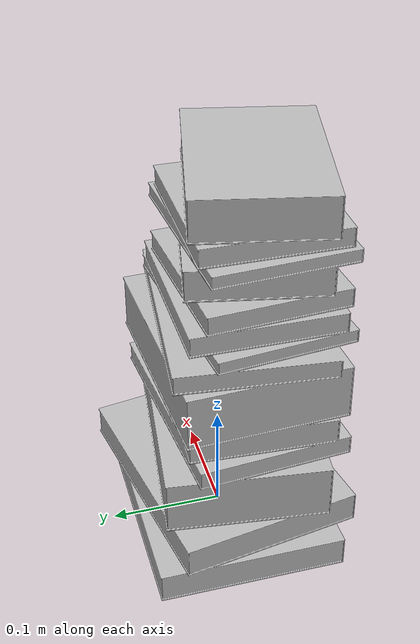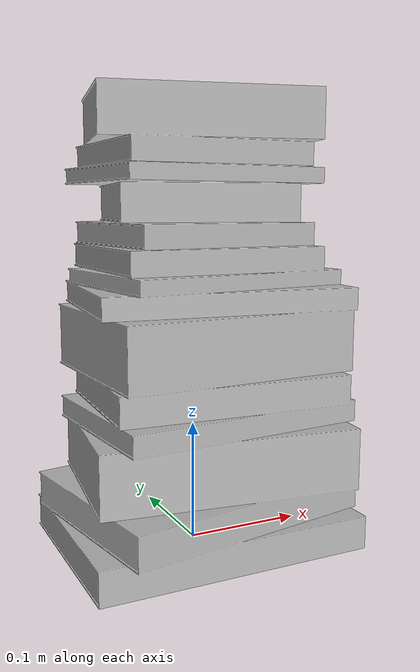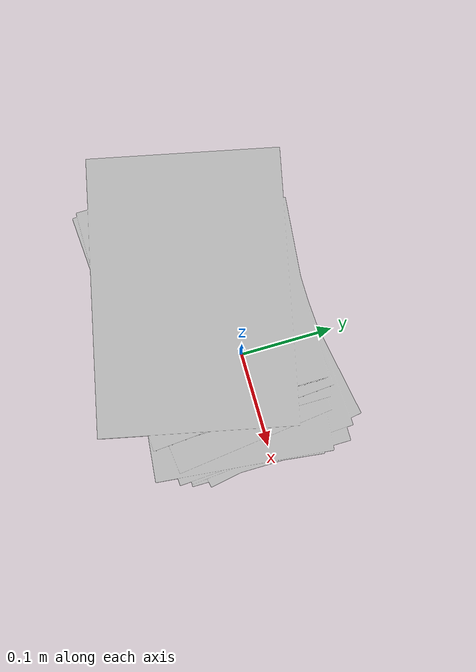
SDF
<?xml version="1.0" ?>
<sdf version="1.5">
  <model name="books">
    <link name="link">
      <pose>0 0 0 0 0 0</pose>
      <collision name="collision">
        <geometry>
          <mesh>
            <uri>model://books/meshes/model.dae</uri>
          </mesh>
        </geometry>
      </collision>
      <visual name="visual">
        <geometry>
          <mesh>
            <uri>model://books/meshes/model.dae</uri>
          </mesh>
        </geometry>
      </visual>
    </link>
    <static>1</static>
  </model>
</sdf>
